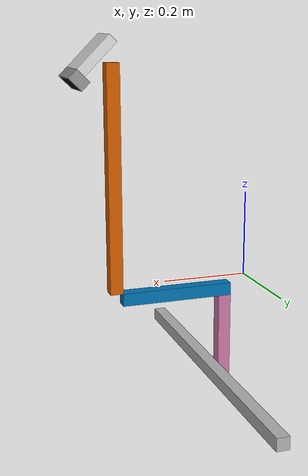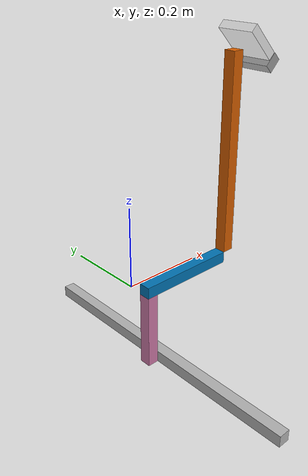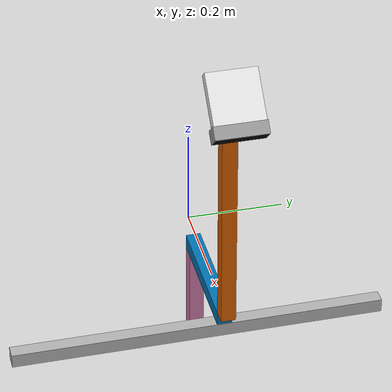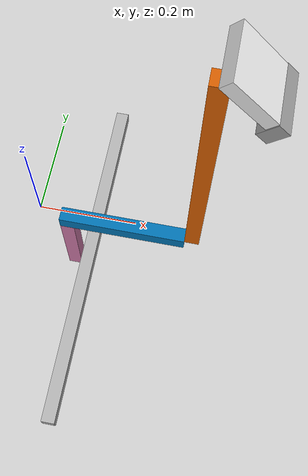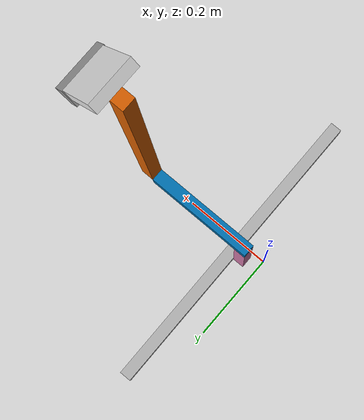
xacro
<?xml version="1.0"?>
<robot xmlns:xacro="http://wiki.ros.org/xacro" name="fake_drapebot_gripper">
  <xacro:include filename="$(find soft_material_deformation_estimation_ros2)/urdf/azure_kinect.urdf.xacro"/>

  <link name="interface_with_robot"/>

  <link name="link1">
    <visual>
      <origin xyz="0 0 0" rpy="0 0 0" />
      <geometry>
        <box size="0.265 0.03 0.03" />
      </geometry>
    </visual>
    <collision>
      <origin xyz="0 0 0" rpy="0 0 0"/>
      <geometry>
        <box size="0.265 0.03 0.03" />
      </geometry>
    </collision>
  </link>

  <joint name="joint1" type="fixed">
    <origin xyz="0.172 0 -0.030" rpy="0 0 0" />
    <parent link="interface_with_robot"/>
    <child link="link1"/>
  </joint>

  <link name="link2">
    <visual>
      <origin xyz="0 0 0" rpy="0 0 0" />
      <geometry>
        <box size="0.03 0.03 0.5172" />
      </geometry>
    </visual>
    <collision>
      <origin xyz="0 0 0" rpy="0 0 0"/>
      <geometry>
        <box size="0.03 0.03 0.5172" />
      </geometry>
    </collision>
  </link>

  <joint name="joint2" type="fixed">
    <origin xyz="0.1475 0 0.2736" rpy="0 0 0" />
    <parent link="link1"/>
    <child link="link2"/>
  </joint>

  <link name="link3">
    <visual>
      <origin xyz="0 0 0" rpy="0 0 0" />
      <geometry>
        <box size="0.03 0.03 0.200" />
      </geometry>
    </visual>
    <collision>
      <origin xyz="0 0 0" rpy="0 0 0"/>
      <geometry>
        <box size="0.03 0.03 0.200" />
      </geometry>
    </collision>
  </link>

  <joint name="joint3" type="fixed">
    <origin xyz="-0.1175 0 -0.115" rpy="0 0 0" />
    <parent link="link1"/>
    <child link="link3"/>
  </joint>

  <link name="link4">
    <visual>
      <origin xyz="0 0 0" rpy="0 0 0" />
      <geometry>
        <box size="0.03 0.80 0.03" />
      </geometry>
    </visual>
    <collision>
      <origin xyz="0 0 0" rpy="0 0 0"/>
      <geometry>
        <box size="0.03 0.80 0.03" />
      </geometry>
    </collision>
  </link>

  <joint name="joint7" type="fixed">
    <origin xyz="0.03 0 -0.085" rpy="0 0 0" />
    <parent link="link3"/>
    <child link="link4"/>
  </joint>

  <link name="interfaccia_camera"/>

  <joint name="joint4" type="fixed">
    <origin xyz="0 0 0.2561" rpy="0 0 0" />
    <parent link="link2"/>
    <child link="interfaccia_camera"/>
  </joint>

  <joint name="joint5" type="fixed">
    <origin xyz="0.09 0 -0.04 " rpy="0 0.7853982 0" />
    <parent link="interfaccia_camera"/>
    <child link="camera_base"/>
  </joint>

  <link name='end_effector'/>

  <joint name="joint6" type="fixed">
    <origin xyz="-0.220 0 -0.7472 " rpy="3.141593 0 1.570796" />
    <parent link="interfaccia_camera"/>
    <child link="end_effector"/>
  </joint>

</robot>

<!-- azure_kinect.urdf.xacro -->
<!--
 Copyright (c) Microsoft Corporation. All rights reserved.
 Licensed under the MIT License.
 -->

<robot name="azure-kinect" xmlns:xacro="http://www.ros.org/wiki/xacro">
  <material name="black_azure">
    <color rgba="0. 0. 0. 1" />
  </material>
  <material name="grey_azure">
    <color rgba="0.6 0.6 0.6 1" />
  </material>
  <material name="white_azure">
    <color rgba="0.9 0.9 0.9 1" />
  </material>

  <link name="camera_body">
    <visual>
      <origin xyz="0. 0. 0." />
      <geometry>
        <box size="0.0994 0.0996 0.023" />
      </geometry>
      <material name="white_azure" />
    </visual>
  </link>

  <link name="camera_base">
    <visual>
      <origin xyz="-0.013 0. 0." />
      <geometry>
        <box size="0.026 0.103 0.039" />
      </geometry>
      <material name="grey_azure" />
    </visual>
  </link>

  <link name="camera_visor">
    <visual>
      <origin xyz="-0.0128 0. 0." />
      <geometry>
        <box size="0.026 0.101 0.037" />
      </geometry>
      <material name="black_azure" />
    </visual>
  </link>

  <joint name="camera_base_to_body" type="fixed">
    <parent link="camera_base" />
    <child link="camera_body" />
    <origin xyz="-0.0757 0. 0.008" rpy="0. 0. 0." />
  </joint>

  <joint name="camera_base_to_visor" type="fixed">
    <parent link="camera_base" />
    <child link="camera_visor" />
    <origin xyz="0. 0. 0." rpy="0. 0. 0." />
  </joint>
</robot>
